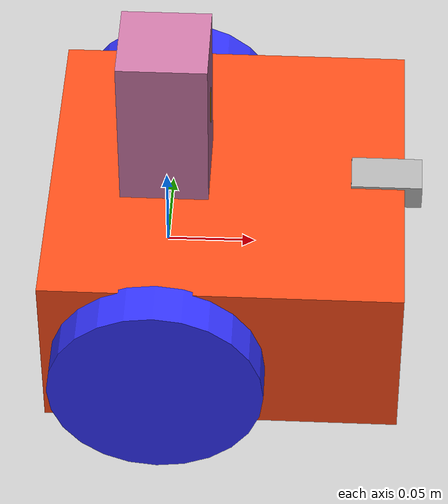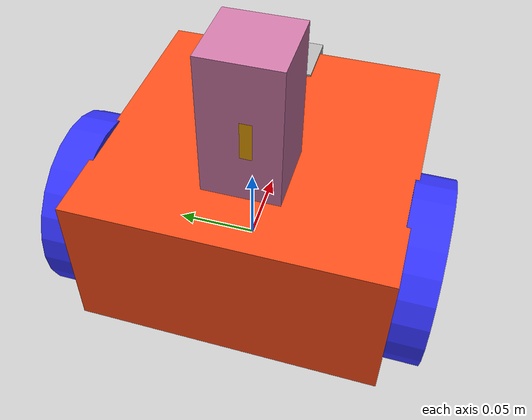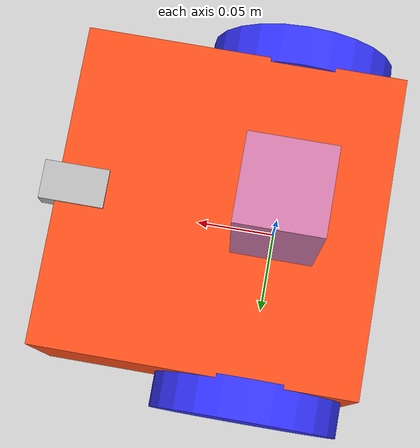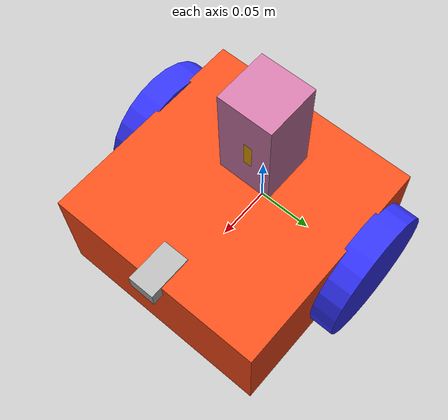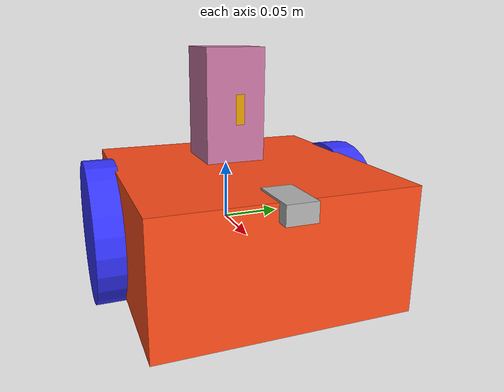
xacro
<?xml version="1.0"?>
<robot xmlns:xacro="http://www.ros.org/wiki/xacro"  name="robot">
<xacro:include filename="/home/lucifer/catkin_ws/src/bot_description/src/urdf/bot.gazebo" />
	<xacro:macro name="inertial_sphere" params="mass radius *origin">
        <inertial>
            <xacro:insert_block name="origin"/>
            <mass value="${mass}" />
            <inertia ixx="${(2/5) * mass * (radius*radius)}" ixy="0.0" ixz="0.0"
                    iyy="${(2/5) * mass * (radius*radius)}" iyz="0.0"
                    izz="${(2/5) * mass * (radius*radius)}" />
        </inertial>
    </xacro:macro>

    <xacro:macro name="inertial_box" params="mass x y z *origin">
        <inertial>
            <xacro:insert_block name="origin"/>
            <mass value="${mass}" />
            <inertia ixx="${(1/12) * mass * (y*y+z*z)}" ixy="0.0" ixz="0.0"
                    iyy="${(1/12) * mass * (x*x+z*z)}" iyz="0.0"
                    izz="${(1/12) * mass * (x*x+y*y)}" />
        </inertial>
    </xacro:macro>

    <xacro:macro name="inertial_cylinder" params="mass length radius *origin">
        <inertial>
            <xacro:insert_block name="origin"/>
            <mass value="${mass}" />
            <inertia ixx="${(1/12) * mass * (3*radius*radius + length*length)}" ixy="0.0" ixz="0.0"
                    iyy="${(1/12) * mass * (3*radius*radius + length*length)}" iyz="0.0"
                    izz="${(1/2) * mass * (radius*radius)}" />
        </inertial>
    </xacro:macro>

    <xacro:property name="chassis_length" value="0.2"/>
    <xacro:property name="chassis_width" value="0.2"/>
    <xacro:property name="chassis_height" value="0.1"/>
    <xacro:property name="chassis_mass" value="1.0"/>
    <xacro:property name="wheel_radius" value="0.06"/>
    <xacro:property name="wheel_thickness" value="0.025"/>
    <xacro:property name="wheel_mass" value="0.05"/>
    <xacro:property name="wheel_offset_x" value="0.065"/>
    <xacro:property name="wheel_offset_y" value="0.11"/>
    <xacro:property name="wheel_offset_z" value="0.044"/>
    <xacro:property name="caster_wheel_radius" value="0.021"/>
    <xacro:property name="caster_wheel_mass" value="0.01"/>
    <xacro:property name="caster_wheel_offset_x" value="0.161"/>
    <xacro:property name="caster_wheel_offset_z" value="${caster_wheel_radius/2}"/>

    <material name="white">
        <color rgba="1 1 1 1" />
    </material>

    <material name="orange">
        <color rgba="1 0.3 0.1 1"/>
    </material>

    <material name="blue">
        <color rgba="0.2 0.2 1 1"/>
    </material>

    <material name="black">
        <color rgba="0 0 0 1"/>
    </material>

    <material name="red">
        <color rgba="1 0 0 1"/>
    </material>

    <!-- BASE LINK -->

    <link name="base_link">

    </link>

    <!-- BASE_FOOTPRINT LINK -->

    <joint name="base_footprint_joint" type="fixed">
        <parent link="base_link"/>
        <child link="base_footprint"/>
        <origin xyz="0 0 0" rpy="0 0 0"/>
    </joint>

    <link name="base_footprint">
    </link>

    <!-- CHASSIS LINK -->

    <joint name="chassis_joint" type="fixed">
        <parent link="base_link"/>
        <child link="chassis"/>
        <origin xyz="${-wheel_offset_x} 0 ${-wheel_offset_z}"/>
    </joint>

    <link name="chassis">
        <visual>
            <origin xyz="${chassis_length/2} 0 ${chassis_height/2}"/>
            <geometry>
                <box size="${chassis_length} ${chassis_width} ${chassis_height}"/>
            </geometry>
            <material name="orange"/>
        </visual>
        <collision>
            <origin xyz="${chassis_length/2} 0 ${chassis_height/2}"/>
            <geometry>
                <box size="${chassis_length} ${chassis_width} ${chassis_height}"/>
            </geometry>
        </collision>
        <xacro:inertial_box mass="0.5" x="${chassis_length}" y="${chassis_width}" z="${chassis_height}">
            <origin xyz="${chassis_length/2} 0 ${chassis_height/2}" rpy="0 0 0"/>
        </xacro:inertial_box>
    </link>

    <gazebo reference="chassis">
        <material>Gazebo/Orange</material>
    </gazebo>

    <!-- LEFT WHEEL LINK -->

    <joint name="left_wheel_joint" type="continuous">
        <parent link="base_link"/>
        <child link="left_wheel"/>
        <origin xyz="0 ${wheel_offset_y} 0" rpy="-${pi/2} 0 0" />
        <axis xyz="0 0 1"/>
    </joint>

    <link name="left_wheel">
        <visual>
            <geometry>
                <cylinder radius="${wheel_radius}" length="${wheel_thickness}"/>
            </geometry>
            <material name="blue"/>
        </visual>
        <collision>
            <geometry>
                <sphere radius="${wheel_radius}"/>
            </geometry>
        </collision>
        <xacro:inertial_cylinder mass="${wheel_mass}" length="${wheel_thickness}" radius="${wheel_radius}">
            <origin xyz="0 0 0" rpy="0 0 0"/>
        </xacro:inertial_cylinder>
    </link>

    <gazebo reference="left_wheel">
        <material>Gazebo/Blue</material>
    </gazebo>

    <!-- RIGHT WHEEL LINK -->

    <joint name="right_wheel_joint" type="continuous">
        <parent link="base_link"/>
        <child link="right_wheel"/>
        <origin xyz="0 ${-wheel_offset_y} 0" rpy="${pi/2} 0 0" />
        <axis xyz="0 0 -1"/>
    </joint>

    <link name="right_wheel">
        <visual>
            <geometry>
                <cylinder radius="${wheel_radius}" length="${wheel_thickness}"/>
            </geometry>
            <material name="blue"/>
        </visual>
        <collision>
            <geometry>
                <sphere radius="${wheel_radius}"/>
            </geometry>
        </collision>
        <xacro:inertial_cylinder mass="${wheel_mass}" length="${wheel_thickness}" radius="${wheel_radius}">
            <origin xyz="0 0 0" rpy="0 0 0"/>
        </xacro:inertial_cylinder>
    </link>

    <gazebo reference="right_wheel">
        <material>Gazebo/Blue</material>
    </gazebo>

    <!-- CASTER WHEEL LINK -->

    <joint name="caster_wheel_joint" type="fixed">
        <parent link="chassis"/>
        <child link="caster_wheel"/>
        <origin xyz="${caster_wheel_offset_x} 0 ${caster_wheel_offset_z}"/>
    </joint>

    <link name="caster_wheel">
        <visual>
            <geometry>
                <sphere radius="${caster_wheel_radius}"/>
            </geometry>
            <material name="white"/>
        </visual>
        <collision>
            <geometry>
                <sphere radius="${caster_wheel_radius}"/>
            </geometry>
        </collision>
        <xacro:inertial_sphere mass="${caster_wheel_mass}" radius="${caster_wheel_radius}">
            <origin xyz="0 0 0" rpy="0 0 0"/>
        </xacro:inertial_sphere>
    </link>

    <gazebo reference="caster_wheel">
        <material>Gazebo/White</material>
        <mu1 value="0.001"/>
        <mu2 value="0.001"/>
    </gazebo>

    <!--  	#############	SENSORS		############		 -->

     <!-- HOKUYO LASER	 -->

  <link name="hokuyo_link">
    <collision>
      <origin xyz="0 0 0 " rpy="0 0 0"/>
      <geometry>
         <box size="0.05 0.05 0.05"/>
      </geometry>
    </collision>
    <visual>
      <origin xyz="0 0 0" rpy="0 0 -1.57"/>
      <geometry>
	    <box size="0.05 0.05 0.1"/>
      </geometry>
    </visual>
    <inertial>
      <mass value="1e-5" />
      <origin xyz="0 0 0.05" rpy="0 0 0"/>
      <inertia ixx="1e-6" ixy="0" ixz="0" iyy="1e-6" iyz="0" izz="1e-6" />
    </inertial>
  </link>

  	<joint name="hokuyo_joint" type="fixed">
    <axis xyz="0 1 0" />
    <origin xyz="0 0 0.1" rpy="0 0 0"/>
    <parent link="base_footprint"/>
    <child link="hokuyo_link"/>
    </joint>

 <!-- CAMERA -->

	 <link name="camera_link_top">
		<collision name="camera_top_collision">
			<origin xyz="0 0 0 " rpy="0 0 0"/>
			<geometry>
		<box size="0.04 0.024 0.015"/>
			</geometry>
		</collision>
		<visual name='camera_top_visual'>
			<origin xyz="0 0 0 " rpy="0 0 0"/>
			<geometry>
		<box size="0.04 0.024 0.015"/>
			</geometry>
		</visual>
		<inertial>
			<mass value="1e-5" />
			<origin xyz="0.125 0 0.05" rpy="0 0 0"/>
			<inertia ixx="1e-6" ixy="0" ixz="0" iyy="1e-6" iyz="0" izz="1e-6" />
		</inertial>
	</link>

 	<joint type="fixed" name="camera_joint_top">
		<axis xyz="0 1 0" />
		<origin xyz="0.125 0 0.05" rpy="0 0 0"/>
		<parent link="base_footprint"/>
		<child link="camera_link_top"/>
	</joint>

   <!-- IMU -->

	 <link name="imu_link">
		<collision name="imu_link_collision">
			<origin xyz="0 0 0 " rpy="0 0 0"/>
			<geometry>
		<box size="0.05 0.015 0.025"/>
			</geometry>
		</collision>
		<visual name='imu_link_visual'>
			<origin xyz="0 0 0 " rpy="0 0 0"/>
			<geometry>
		<box size="0.05 0.015 0.025"/>
			</geometry>
		</visual>
		<inertial>
			<mass value="1e-5" />
			<origin xyz="0 0 0.1" rpy="0 0 0"/>
			<inertia ixx="1e-6" ixy="0" ixz="0" iyy="1e-6" iyz="0" izz="1e-6" />
		</inertial>
	</link>

 	<joint type="fixed" name="imu_joint">
		<axis xyz="0 1 0" />
		<origin xyz="0 0 0.1" rpy="0 0 0"/>
		<parent link="base_footprint"/>
		<child link="imu_link"/>
	</joint>

</robot>
